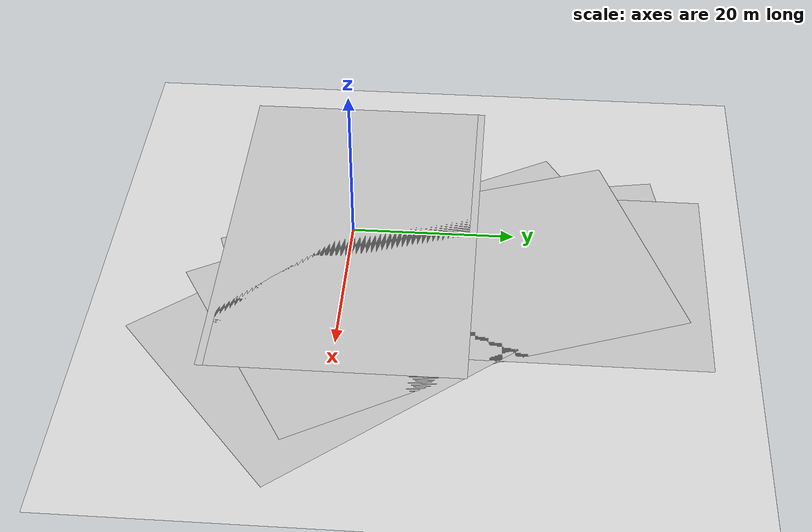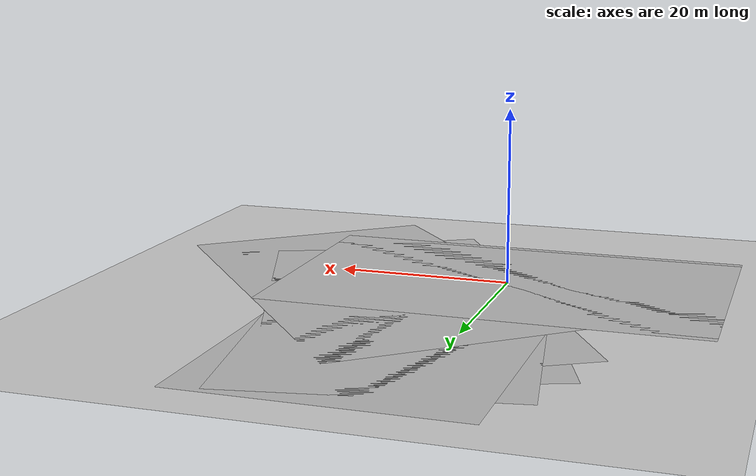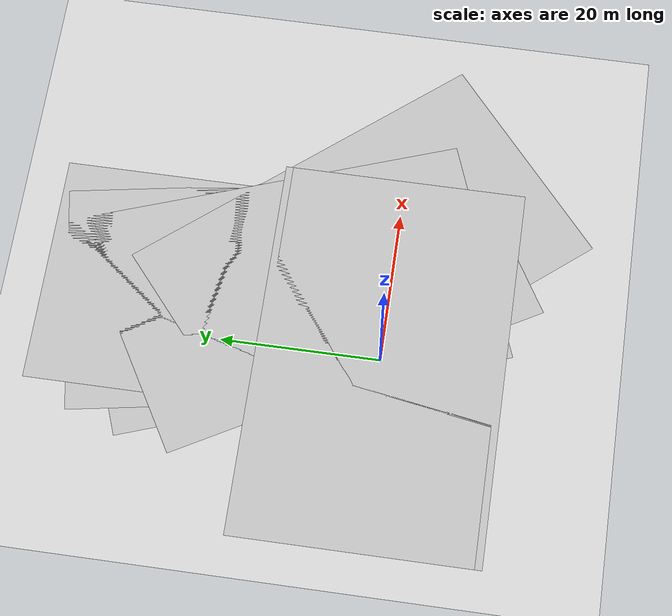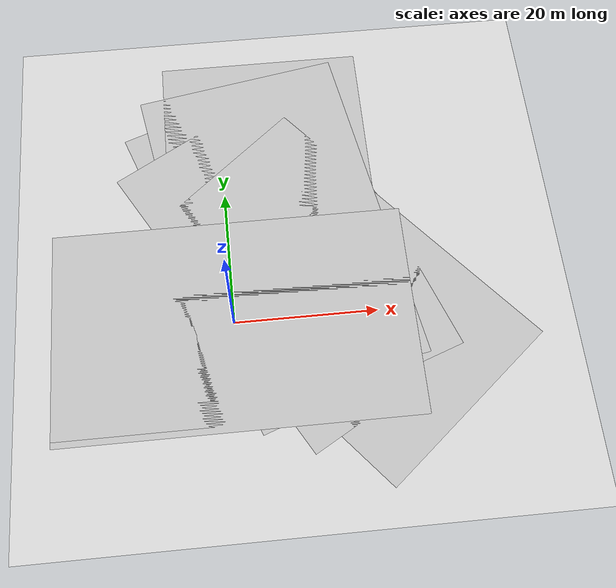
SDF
<?xml version="1.0" ?>
<sdf version='1.9'>
  <world name='obstacle_track'>

  <!-- Physics definitions -->
    <physics name='1ms' type='ignored'>
      <max_step_size>0.001</max_step_size>
      <real_time_factor>1</real_time_factor>
      <real_time_update_rate>1000</real_time_update_rate>
    </physics>
    <gravity>0 0 -9.8</gravity>
    <magnetic_field>6e-06 2.3e-05 -4.2e-05</magnetic_field>
    <atmosphere type='adiabatic'/>
    <!-- width = 36" = 0.9144 meters -->

    <!-- plugins -->
    <plugin name='gz::sim::systems::Physics' filename='ignition-gazebo-physics-system'/>
    <plugin name='gz::sim::systems::UserCommands' filename='ignition-gazebo-user-commands-system'/>
    <plugin name='gz::sim::systems::SceneBroadcaster' filename='ignition-gazebo-scene-broadcaster-system'/>
    <plugin name='gz::sim::systems::Contact' filename='ignition-gazebo-contact-system'/>
    <plugin filename="ignition-gazebo-imu-system" name="ignition::gazebo::systems::Imu"/>
    <plugin filename="gz-sim-sensors-system" name="gz::sim::systems::Sensors">
        <render_engine>ogre2</render_engine>
    </plugin>
    <gazebo>
        <plugin filename="libignition-gazebo-pose-publisher-system.so"
              name="ignition::gazebo::systems::PosePublisher">
          <publish_link_pose>true</publish_link_pose>
          <publish_visual_pose>false</publish_visual_pose>
          <publish_nested_model_pose>true</publish_nested_model_pose>
          <use_pose_vector_msg>true</use_pose_vector_msg>
          <static_publisher>false</static_publisher>
        </plugin>
    </gazebo>

    <scene>
      <ambient>0.4 0.4 0.4 1</ambient>
      <background>0.7 0.7 0.7 1</background>
      <shadows>true</shadows>
    </scene>

    <!--light simulation -->
    <light name='sun' type='directional'>
      <pose>0 0 10 0 -0 0</pose>
      <cast_shadows>true</cast_shadows>
      <intensity>1</intensity>
      <direction>-0.5 0.1 -0.9</direction>
      <diffuse>0.8 0.8 0.8 1</diffuse>
      <specular>0.2 0.2 0.2 1</specular>
      <attenuation>
        <range>1000</range>
        <linear>0.01</linear>
        <constant>0.90000000000000002</constant>
        <quadratic>0.001</quadratic>
      </attenuation>
      <spot>
        <inner_angle>0</inner_angle>
        <outer_angle>0</outer_angle>
        <falloff>0</falloff>
      </spot>
    </light>

    <!-- World Desc -->
    <model name='ground_plane'>
      <static>true</static>
      <link name='link'>
        <collision name='collision'>
          <geometry>
            <plane>
              <normal>0 0 1</normal>
              <size>100 100</size>
            </plane>
          </geometry>
          <surface>
            <friction>
              <ode/>
            </friction>
            <bounce/>
            <contact/>
          </surface>
        </collision>
        <visual name='visual'>
          <geometry>
            <plane>
              <normal>0 0 1</normal>
              <size>100 100</size>
            </plane>
          </geometry>
          <material>
            <ambient>0.8 0.8 0.8 1</ambient>
            <diffuse>0.8 0.8 0.8 1</diffuse>
            <specular>0.8 0.8 0.8 1</specular>
          </material>
        </visual>
        <pose>0 0 0 0 -0 0</pose>
        <inertial>
          <pose>0 0 0 0 -0 0</pose>
          <mass>1</mass>
          <inertia>
            <ixx>1</ixx>
            <ixy>0</ixy>
            <ixz>0</ixz>
            <iyy>1</iyy>
            <iyz>0</iyz>
            <izz>1</izz>
          </inertia>
        </inertial>
        <enable_wind>false</enable_wind>
      </link>
      <pose>0 0 0 0 -0 0</pose>
      <self_collide>false</self_collide>
    </model>
    <include>
        <name>line_0</name>
        <uri>../models/drawn_line/model.sdf</uri>
        <pose>0 -0.4572 0.25 0 0 0.0</pose>
    </include>
    <include>
        <name>line_1</name>
        <uri>../models/drawn_line/model.sdf</uri>
        <pose>0 0.4572 0.25 0 0 0.0</pose>
    </include>
    <include>
        <name>polyline_58_5</name>
        <uri>../models/polyline/58.5/model.sdf</uri>
        <pose>6.7056 18.288 0.0 0 0 -1.5708</pose>
    </include>
    <include>
        <name>polyline_61_5</name>
        <uri>../models/polyline/61.5/model.sdf</uri>
        <pose>6.7056 18.288 0.0 0 0 -1.5708</pose>
    </include>
    <include>
        <name>polyline_48_5</name>
        <uri>../models/polyline/48.5/model.sdf</uri>
        <pose>7.235 15.285 0.0 0 0 -1.3962634</pose>
    </include>
    <include>
        <name>polyline_51_5</name>
        <uri>../models/polyline/51.5/model.sdf</uri>
        <pose>7.235 15.285 0.0 0 0 -1.3962634</pose>
    </include>
    <include>
        <name>polyline_38_5</name>
        <uri>../models/polyline/38.5/model.sdf</uri>
        <pose>8.2756 12.422 0.0 0 0 -1.22173</pose>
    </include>
    <include>
        <name>polyline_41_5</name>
        <uri>../models/polyline/41.5/model.sdf</uri>
        <pose>8.2756 12.422 0.0 0 0 -1.22173</pose>
    </include>
    <include>
        <name>polyline_28_5</name>
        <uri>../models/polyline/28.5/model.sdf</uri>
        <pose>9.8 9.785 0.0 0 0 -1.0472</pose>
    </include>
    <include>
        <name>polyline_31_5</name>
        <uri>../models/polyline/31.5/model.sdf</uri>
        <pose>9.8 9.785 0.0 0 0 -1.0472</pose>
    </include>
    <include>
        <name>polyline_4.5_150</name>
        <uri>../models/polyline/4.5_150/model.sdf</uri>
        <pose>14.46 4.14 0.0 0 0 -0.872665</pose>
    </include>
    <include>
        <name>polyline_7.5_150</name>
        <uri>../models/polyline/7.5_150/model.sdf</uri>
        <pose>14.46 4.14 0.0 0 0 -0.872665</pose>
    </include>
    <!-- size of the strawbale 1, 0.5, 0.5 -->
    <!-- Robot Description -->
  </world>
</sdf>

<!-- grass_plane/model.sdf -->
<sdf version="1.6">
  <model name="grass_plane">
    <static>true</static>
    <link name="grass_plane_link">
      <visual name="body_visual">
      	<geometry>
          <mesh><uri>meshes/grass_plane.dae</uri></mesh>
        </geometry>
      </visual>
      <collision name="body_collision">
      	<geometry>
          <mesh><uri>meshes/grass_plane.dae</uri></mesh>
          <plane>
            <normal>0 0 1</normal>
            <size>100 100</size>
          </plane>
        </geometry>
        <surface>
          <friction>
            <ode>
              <mu>0.8</mu> <!-- Coulomb friction coefficient -->
              <mu2>0.8</mu2> <!-- Second friction direction -->
            </ode>
          </friction>
        </surface>
      </collision>
    </link>
  </model>
</sdf>
